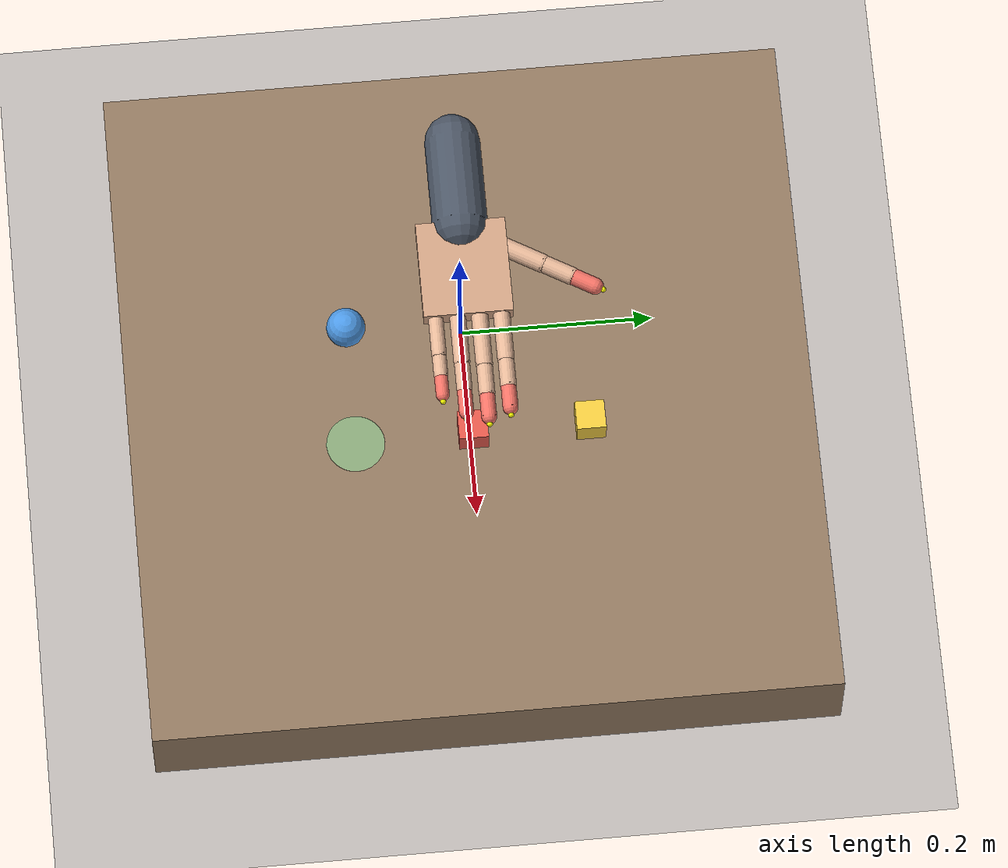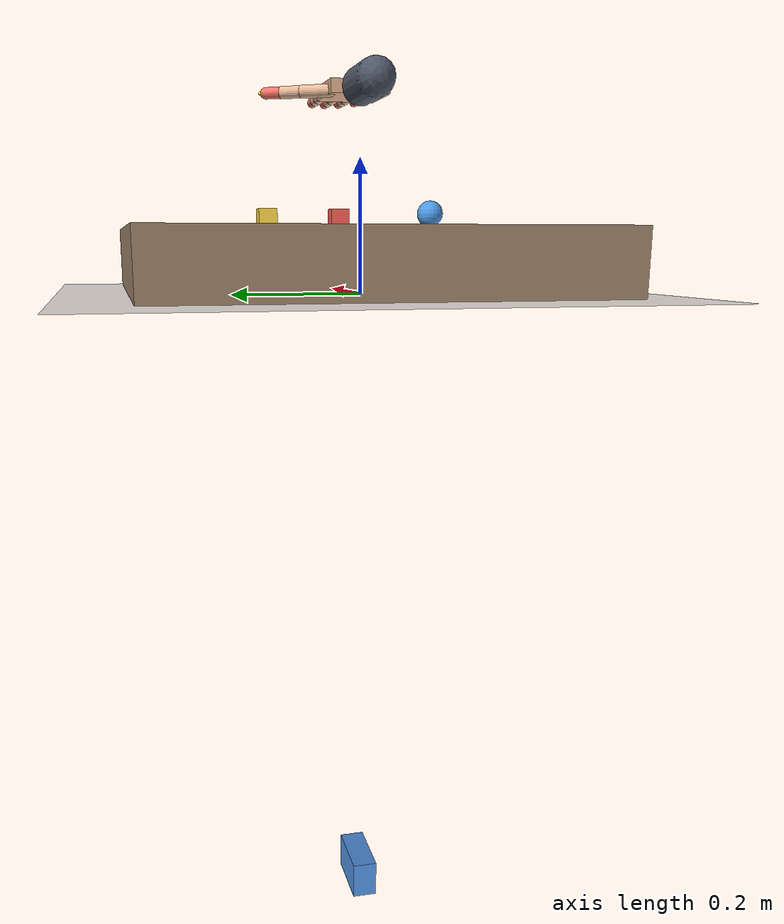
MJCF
<mujoco model="hand_table">
  <include file="hand.xml"/>

  <!-- 抓取需要"静摩擦"：MuJoCo 默认的软接触摩擦会缓慢蠕滑（实测捏住的方块抬起后约 6 mm/s 往下滑，1~3 s 内掉落）。
       noslip 求解器在每步后再把摩擦接触上的滑移消掉。只加在桌面场景里，hand.xml 不变。见 docs/NEXT_STAGE_B.md 附录 A。 -->
  <option noslip_iterations="10"/>

  <asset>
    <!-- 桌面用和地面不同的颜色，否则看不出桌子 -->
    <texture name="tabletop" type="2d" builtin="checker" rgb1="0.55 0.45 0.36" rgb2="0.60 0.50 0.40" width="300" height="300"/>
    <material name="table" texture="tabletop" texrepeat="6 6" reflectance="0.05"/>
  </asset>

  <worldbody>
    <geom name="table" type="box" size="0.35 0.35 0.05" pos="0.10 0 0.05"
          material="table" contype="1" conaffinity="1" friction="1.0 0.005 0.0001"/>
    <!-- 放置区标记（演示 3 的 B 点）：只是一块浅色薄片，不参与碰撞 -->
    <geom name="place_marker" type="cylinder" size="0.03 0.0005" pos="0.15 -0.12 0.1003"
          rgba="0.55 0.85 0.60 0.55" contype="0" conaffinity="0" group="1"/>

    <!-- 基线物体：3 cm 方块 -->
    <body name="cube" pos="0.15 0 0.1155">
      <freejoint name="cube_free"/>
      <geom name="cube_geom" type="box" size="0.015 0.015 0.015" mass="0.03" rgba="0.9 0.35 0.3 1"
            contype="1" conaffinity="1" condim="4" friction="1.0 0.02 0.0001"/>
    </body>

    <!-- 易碎物（演示 3）：外形同 cube，黄色。"碎"是 Python 里按指力判定的（app/core/grasp.py），不是物理破碎 -->
    <body name="fragile" pos="0.15 0.12 0.1155">
      <freejoint name="fragile_free"/>
      <geom name="fragile_geom" type="box" size="0.015 0.015 0.015" mass="0.03" rgba="0.95 0.80 0.25 1"
            contype="1" conaffinity="1" condim="4" friction="1.0 0.02 0.0001"/>
    </body>

    <!-- 球（演示 4）：半径 2 cm。放在演示 3 的路径之外。
         决策门 G1：有了 noslip（静摩擦）后，原来的线性捏取姿态就能稳定捏起平桌面上的球；
         试过的降级方案（直立圆柱）在定位误差下并不比球好，柔顺参数下还够不到 1.5 N，所以保留球（见 docs/NEXT_STAGE_B.md 附录 A） -->
    <body name="ball" pos="0.03 -0.12 0.1205">
      <freejoint name="ball_free"/>
      <geom name="ball_geom" type="sphere" size="0.02" mass="0.03" rgba="0.30 0.60 0.90 1"
            contype="1" conaffinity="1" condim="4" friction="1.0 0.02 0.0001"/>
    </body>
  </worldbody>
</mujoco>

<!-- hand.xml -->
<mujoco model="dexterous_hand">
  <!-- 五指灵巧手 + 6 自由度手腕。角度单位弧度，长度单位米。
       坐标约定（手腕零位）：手指沿 +x 伸出，拇指在 +y 侧，手掌朝 -z（朝下）。
       手指/拇指的弯曲轴为 +y，正方向 = 朝手掌弯曲。 -->
  <compiler angle="radian" autolimits="true"/>
  <option timestep="0.002" gravity="0 0 -9.81" integrator="implicitfast"/>

  <visual>
    <global offwidth="1280" offheight="800"/>
    <headlight ambient="0.45 0.45 0.45" diffuse="0.55 0.55 0.55" specular="0.1 0.1 0.1"/>
    <quality shadowsize="2048"/>
    <map znear="0.005" force="0.006"/>
    <rgba contactforce="1 0.40 0.12 1" contactpoint="1 0.92 0.15 1"/>
    <scale forcewidth="0.007" contactwidth="0.010" contactheight="0.003"/>
  </visual>

  <asset>
    <texture type="skybox" builtin="gradient" rgb1="0.62 0.76 0.92" rgb2="0.08 0.12 0.2" width="512" height="512"/>
    <texture name="grid" type="2d" builtin="checker" rgb1="0.22 0.25 0.3" rgb2="0.28 0.31 0.37" width="300" height="300"/>
    <material name="grid" texture="grid" texrepeat="8 8" reflectance="0.12"/>
    <material name="skin" rgba="0.90 0.72 0.60 1"/>
    <material name="palm" rgba="0.82 0.64 0.52 1"/>
    <material name="tip" rgba="0.95 0.45 0.40 1"/>
    <material name="cuff" rgba="0.30 0.34 0.40 1"/>
    <material name="prop" rgba="0.30 0.55 0.85 1"/>
  </asset>

  <default>
    <!-- 手部几何体只和世界/物体碰撞（contype=1, conaffinity=0），手内部互不碰撞，避免卡住 -->
    <geom contype="1" conaffinity="0" density="1000" friction="1.0 0.005 0.0001" material="skin"/>
    <default class="finger">
      <joint type="hinge" damping="0.005" armature="0.001"/>
      <!-- 力矩输出 (N·m)：由 Python 的关节阻抗控制器按 K(q_d-q)-D*qd 计算 -->
      <motor ctrlrange="-1 1"/>
    </default>
    <default class="wrist_slide">
      <joint type="slide" damping="0" armature="0.05"/>
      <position kp="3000" kv="100" forcerange="-300 300"/>
    </default>
    <default class="wrist_rot">
      <joint type="hinge" damping="0" armature="0.005"/>
      <position kp="60" kv="2" forcerange="-20 20"/>
    </default>
  </default>

  <worldbody>
    <light pos="0.5 -0.5 1.5" dir="-0.3 0.3 -1" directional="true" castshadow="true"/>
    <geom name="floor" type="plane" size="1.5 1.5 0.1" material="grid" contype="1" conaffinity="1"/>
    <camera name="front" pos="0.75 -0.6 0.55" xyaxes="0.62 0.78 0 -0.25 0.2 0.95"/>
    <!-- 演示道具：固定方块(mocap)。平时藏在地下，演示脚本通过 data.mocap_pos 把它摆出来 -->
    <body name="prop_block" mocap="true" pos="0 0 -1">
      <geom name="prop_block_geom" type="box" size="0.05 0.02 0.03" material="prop" contype="1" conaffinity="1" friction="1.0 0.005 0.0001"/>
    </body>

    <body name="wrist_x_carrier" pos="0 0 0.30" gravcomp="1">
      <inertial pos="0 0 0" mass="0.05" diaginertia="1e-4 1e-4 1e-4"/>
      <joint name="wrist_x" class="wrist_slide" axis="1 0 0" range="-0.3 0.3"/>
      <body name="wrist_y_carrier" gravcomp="1">
        <inertial pos="0 0 0" mass="0.05" diaginertia="1e-4 1e-4 1e-4"/>
        <joint name="wrist_y" class="wrist_slide" axis="0 1 0" range="-0.3 0.3"/>
        <body name="wrist_z_carrier" gravcomp="1">
          <inertial pos="0 0 0" mass="0.05" diaginertia="1e-4 1e-4 1e-4"/>
          <joint name="wrist_z" class="wrist_slide" axis="0 0 1" range="-0.295 0.3"/>
          <body name="wrist_yaw_carrier" gravcomp="1">
            <inertial pos="0 0 0" mass="0.05" diaginertia="1e-4 1e-4 1e-4"/>
            <joint name="wrist_yaw" class="wrist_rot" axis="0 0 1" range="-3.0 3.0"/>
            <body name="wrist_pitch_carrier" gravcomp="1">
              <inertial pos="0 0 0" mass="0.05" diaginertia="1e-4 1e-4 1e-4"/>
              <joint name="wrist_pitch" class="wrist_rot" axis="0 1 0" range="-1.6 1.6"/>
              <body name="palm" gravcomp="1">
                <joint name="wrist_roll" class="wrist_rot" axis="1 0 0" range="-3.0 3.0"/>
                <geom name="palm_geom" type="box" size="0.05 0.045 0.01" pos="0.05 0 0" material="palm"/>
                <geom name="cuff_geom" type="capsule" fromto="-0.09 0 0 0.0 0 0" size="0.028" density="200" material="cuff"/>

                <body name="index_prox" pos="0.10 0.033 0">
                  <joint name="index_spread" class="finger" axis="0 0 1" range="-0.35 0.35"/>
                  <joint name="index_mcp" class="finger" axis="0 1 0" range="-0.2 1.57"/>
                  <geom type="capsule" fromto="0 0 0 0.048 0 0" size="0.0085"/>
                  <body name="index_mid" pos="0.048 0 0">
                    <joint name="index_pip" class="finger" axis="0 1 0" range="0.0 1.9"/>
                    <geom type="capsule" fromto="0 0 0 0.028 0 0" size="0.0081"/>
                    <body name="index_dist" pos="0.028 0 0">
                      <joint name="index_dip" class="finger" axis="0 1 0" range="0.0 1.4"/>
                      <geom type="capsule" fromto="0 0 0 0.024 0 0" size="0.0077" material="tip"/>
                      <site name="index_tip" pos="0.0316 0 0" size="0.003" rgba="1 1 0 1"/>
                    </body>
                  </body>
                </body>

                <body name="middle_prox" pos="0.10 0.011 0">
                  <joint name="middle_spread" class="finger" axis="0 0 1" range="-0.35 0.35"/>
                  <joint name="middle_mcp" class="finger" axis="0 1 0" range="-0.2 1.57"/>
                  <geom type="capsule" fromto="0 0 0 0.052 0 0" size="0.0085"/>
                  <body name="middle_mid" pos="0.052 0 0">
                    <joint name="middle_pip" class="finger" axis="0 1 0" range="0.0 1.9"/>
                    <geom type="capsule" fromto="0 0 0 0.031 0 0" size="0.0081"/>
                    <body name="middle_dist" pos="0.031 0 0">
                      <joint name="middle_dip" class="finger" axis="0 1 0" range="0.0 1.4"/>
                      <geom type="capsule" fromto="0 0 0 0.025 0 0" size="0.0077" material="tip"/>
                      <site name="middle_tip" pos="0.0326 0 0" size="0.003" rgba="1 1 0 1"/>
                    </body>
                  </body>
                </body>

                <body name="ring_prox" pos="0.10 -0.011 0">
                  <joint name="ring_spread" class="finger" axis="0 0 1" range="-0.35 0.35"/>
                  <joint name="ring_mcp" class="finger" axis="0 1 0" range="-0.2 1.57"/>
                  <geom type="capsule" fromto="0 0 0 0.048 0 0" size="0.0082"/>
                  <body name="ring_mid" pos="0.048 0 0">
                    <joint name="ring_pip" class="finger" axis="0 1 0" range="0.0 1.9"/>
                    <geom type="capsule" fromto="0 0 0 0.029 0 0" size="0.0078"/>
                    <body name="ring_dist" pos="0.029 0 0">
                      <joint name="ring_dip" class="finger" axis="0 1 0" range="0.0 1.4"/>
                      <geom type="capsule" fromto="0 0 0 0.024 0 0" size="0.0074" material="tip"/>
                      <site name="ring_tip" pos="0.0314 0 0" size="0.003" rgba="1 1 0 1"/>
                    </body>
                  </body>
                </body>

                <body name="little_prox" pos="0.10 -0.033 0">
                  <joint name="little_spread" class="finger" axis="0 0 1" range="-0.35 0.35"/>
                  <joint name="little_mcp" class="finger" axis="0 1 0" range="-0.2 1.57"/>
                  <geom type="capsule" fromto="0 0 0 0.038 0 0" size="0.0075"/>
                  <body name="little_mid" pos="0.038 0 0">
                    <joint name="little_pip" class="finger" axis="0 1 0" range="0.0 1.9"/>
                    <geom type="capsule" fromto="0 0 0 0.022 0 0" size="0.0071"/>
                    <body name="little_dist" pos="0.022 0 0">
                      <joint name="little_dip" class="finger" axis="0 1 0" range="0.0 1.4"/>
                      <geom type="capsule" fromto="0 0 0 0.021 0 0" size="0.0067" material="tip"/>
                      <site name="little_tip" pos="0.0278 0 0" size="0.003" rgba="1 1 0 1"/>
                    </body>
                  </body>
                </body>

                <body name="thumb_prox" pos="0.025 0.04 -0.004" euler="0 0 1.0472">
                  <joint name="thumb_rot" class="finger" axis="0 0 -1" range="-0.5 1.2"/>
                  <joint name="thumb_cmc" class="finger" axis="0 1 0" range="-0.3 1.4"/>
                  <geom type="capsule" fromto="0 0 0 0.045 0 0" size="0.0095"/>
                  <body name="thumb_mid" pos="0.045 0 0">
                    <joint name="thumb_mcp" class="finger" axis="0 1 0" range="-0.1 1.5"/>
                    <geom type="capsule" fromto="0 0 0 0.032 0 0" size="0.009"/>
                    <body name="thumb_dist" pos="0.032 0 0">
                      <joint name="thumb_ip" class="finger" axis="0 1 0" range="-0.1 1.4"/>
                      <geom type="capsule" fromto="0 0 0 0.026 0 0" size="0.0085" material="tip"/>
                      <site name="thumb_tip" pos="0.0345 0 0" size="0.003" rgba="1 1 0 1"/>
                    </body>
                  </body>
                </body>
              </body>
            </body>
          </body>
        </body>
      </body>
    </body>
  </worldbody>

  <actuator>
    <position name="act_wrist_x" joint="wrist_x" class="wrist_slide" ctrlrange="-0.3 0.3"/>
    <position name="act_wrist_y" joint="wrist_y" class="wrist_slide" ctrlrange="-0.3 0.3"/>
    <position name="act_wrist_z" joint="wrist_z" class="wrist_slide" ctrlrange="-0.295 0.3"/>
    <position name="act_wrist_yaw" joint="wrist_yaw" class="wrist_rot" ctrlrange="-3.0 3.0"/>
    <position name="act_wrist_pitch" joint="wrist_pitch" class="wrist_rot" ctrlrange="-1.6 1.6"/>
    <position name="act_wrist_roll" joint="wrist_roll" class="wrist_rot" ctrlrange="-3.0 3.0"/>
    <motor name="act_index_spread" joint="index_spread" class="finger"/>
    <motor name="act_index_mcp" joint="index_mcp" class="finger"/>
    <motor name="act_index_pip" joint="index_pip" class="finger"/>
    <motor name="act_index_dip" joint="index_dip" class="finger"/>
    <motor name="act_middle_spread" joint="middle_spread" class="finger"/>
    <motor name="act_middle_mcp" joint="middle_mcp" class="finger"/>
    <motor name="act_middle_pip" joint="middle_pip" class="finger"/>
    <motor name="act_middle_dip" joint="middle_dip" class="finger"/>
    <motor name="act_ring_spread" joint="ring_spread" class="finger"/>
    <motor name="act_ring_mcp" joint="ring_mcp" class="finger"/>
    <motor name="act_ring_pip" joint="ring_pip" class="finger"/>
    <motor name="act_ring_dip" joint="ring_dip" class="finger"/>
    <motor name="act_little_spread" joint="little_spread" class="finger"/>
    <motor name="act_little_mcp" joint="little_mcp" class="finger"/>
    <motor name="act_little_pip" joint="little_pip" class="finger"/>
    <motor name="act_little_dip" joint="little_dip" class="finger"/>
    <motor name="act_thumb_rot" joint="thumb_rot" class="finger"/>
    <motor name="act_thumb_cmc" joint="thumb_cmc" class="finger"/>
    <motor name="act_thumb_mcp" joint="thumb_mcp" class="finger"/>
    <motor name="act_thumb_ip" joint="thumb_ip" class="finger"/>
  </actuator>
</mujoco>
